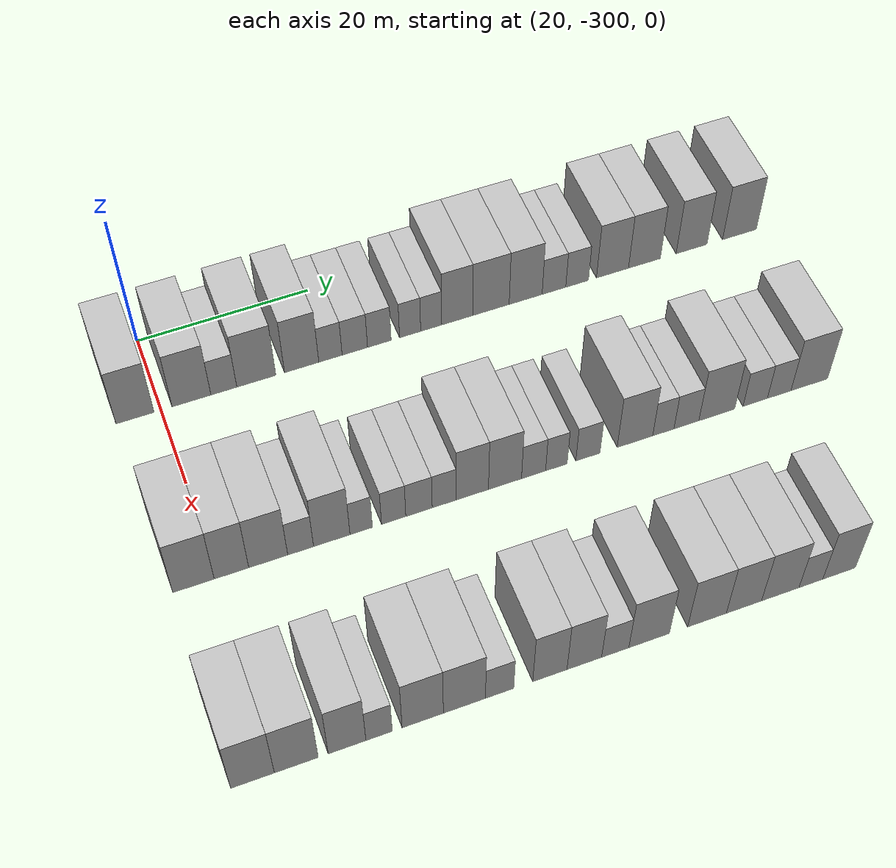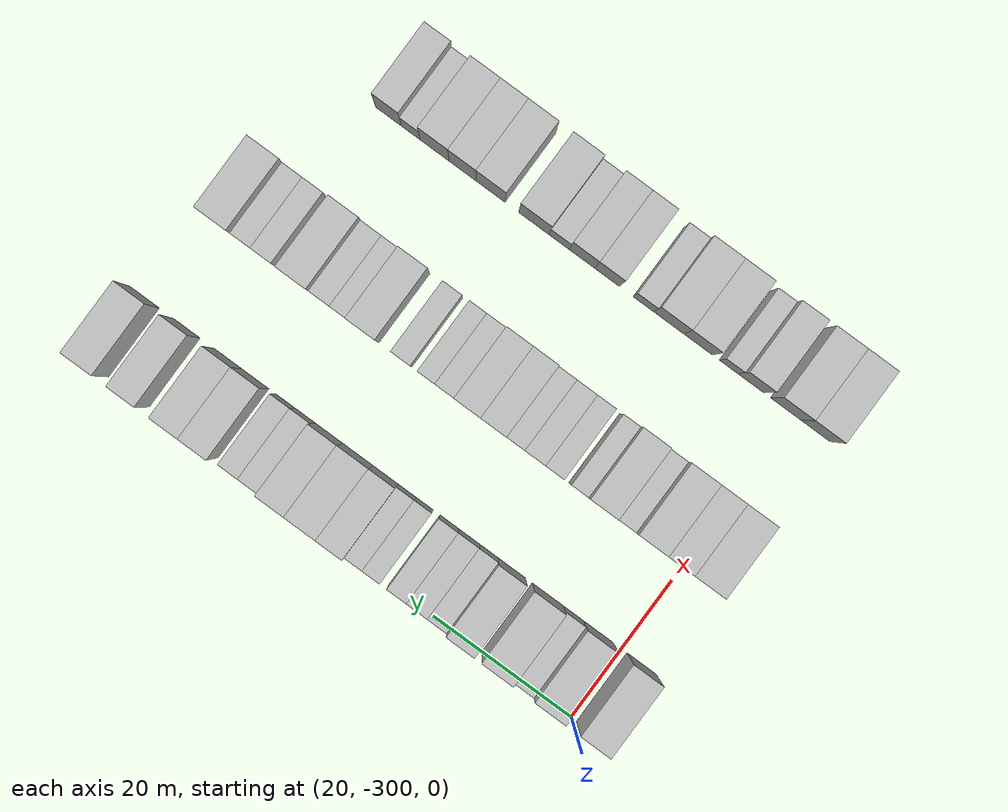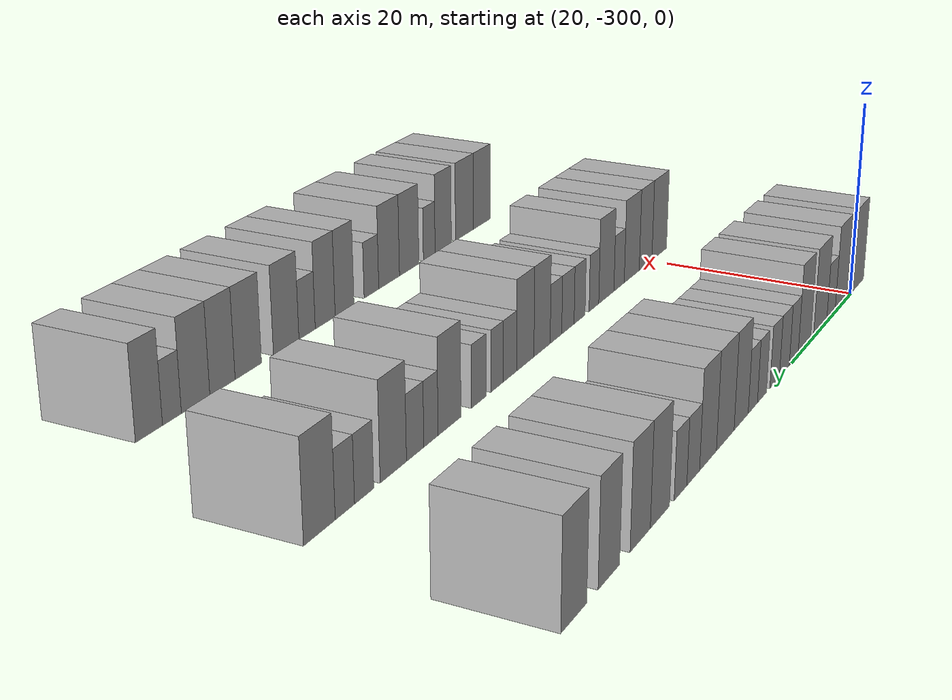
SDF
<sdf version="1.6">
 <world name="default">
  <model name="building_20">
   <static>1</static>
   <pose>25.0000 -302.8549 0 0.000000 0.000000 0.000000</pose>
   <link name="link">
    <pose>0 0 4.50 0 0 0</pose>
    <collision name="collision"><geometry><box><size>10.0000 4.2278 9.0000</size></box></geometry></collision>
    <visual name="visual">
     <cast_shadows>0</cast_shadows>
     <geometry><box><size>10.0000 4.2278 9.0000</size></box></geometry>
     <material>
      <script>
       <uri>model://HANNAS_wall/materials/scripts</uri>
       <uri>model://HANNAS_wall/materials/textures</uri>
       <name>vrc/HANNAS_wall</name>
      </script>
     </material>
    </visual>
   </link>
  </model>
  <model name="building_21">
   <static>1</static>
   <pose>25.0000 -296.5564 0 0.000000 0.000000 0.000000</pose>
   <link name="link">
    <pose>0 0 4.50 0 0 0</pose>
    <collision name="collision"><geometry><box><size>10.0000 4.3691 9.0000</size></box></geometry></collision>
    <visual name="visual">
     <cast_shadows>0</cast_shadows>
     <geometry><box><size>10.0000 4.3691 9.0000</size></box></geometry>
     <material>
      <script>
       <uri>model://HANNAS_wall/materials/scripts</uri>
       <uri>model://HANNAS_wall/materials/textures</uri>
       <name>vrc/HANNAS_wall</name>
      </script>
     </material>
    </visual>
   </link>
  </model>
  <model name="building_22">
   <static>1</static>
   <pose>25.0000 -292.9049 0 0.000000 0.000000 0.000000</pose>
   <link name="link">
    <pose>0 0 3.00 0 0 0</pose>
    <collision name="collision"><geometry><box><size>10.0000 2.9339 6.0000</size></box></geometry></collision>
    <visual name="visual">
     <cast_shadows>0</cast_shadows>
     <geometry><box><size>10.0000 2.9339 6.0000</size></box></geometry>
     <material>
      <script>
       <uri>model://HANNAS_wall/materials/scripts</uri>
       <uri>model://HANNAS_wall/materials/textures</uri>
       <name>vrc/HANNAS_wall</name>
      </script>
     </material>
    </visual>
   </link>
  </model>
  <model name="building_23">
   <static>1</static>
   <pose>25.0000 -289.2133 0 0.000000 0.000000 0.000000</pose>
   <link name="link">
    <pose>0 0 4.50 0 0 0</pose>
    <collision name="collision"><geometry><box><size>10.0000 4.4492 9.0000</size></box></geometry></collision>
    <visual name="visual">
     <cast_shadows>0</cast_shadows>
     <geometry><box><size>10.0000 4.4492 9.0000</size></box></geometry>
     <material>
      <script>
       <uri>model://HANNAS_wall/materials/scripts</uri>
       <uri>model://HANNAS_wall/materials/textures</uri>
       <name>vrc/HANNAS_wall</name>
      </script>
     </material>
    </visual>
   </link>
  </model>
  <model name="building_24">
   <static>1</static>
   <pose>25.0000 -284.0111 0 0.000000 0.000000 0.000000</pose>
   <link name="link">
    <pose>0 0 4.50 0 0 0</pose>
    <collision name="collision"><geometry><box><size>10.0000 3.9553 9.0000</size></box></geometry></collision>
    <visual name="visual">
     <cast_shadows>0</cast_shadows>
     <geometry><box><size>10.0000 3.9553 9.0000</size></box></geometry>
     <material>
      <script>
       <uri>model://HANNAS_wall/materials/scripts</uri>
       <uri>model://HANNAS_wall/materials/textures</uri>
       <name>vrc/HANNAS_wall</name>
      </script>
     </material>
    </visual>
   </link>
  </model>
  <model name="building_25">
   <static>1</static>
   <pose>25.0000 -280.6774 0 0.000000 0.000000 0.000000</pose>
   <link name="link">
    <pose>0 0 3.00 0 0 0</pose>
    <collision name="collision"><geometry><box><size>10.0000 2.7122 6.0000</size></box></geometry></collision>
    <visual name="visual">
     <cast_shadows>0</cast_shadows>
     <geometry><box><size>10.0000 2.7122 6.0000</size></box></geometry>
     <material>
      <script>
       <uri>model://HANNAS_wall/materials/scripts</uri>
       <uri>model://HANNAS_wall/materials/textures</uri>
       <name>vrc/HANNAS_wall</name>
      </script>
     </material>
    </visual>
   </link>
  </model>
  <model name="building_26">
   <static>1</static>
   <pose>25.0000 -277.8356 0 0.000000 0.000000 0.000000</pose>
   <link name="link">
    <pose>0 0 3.00 0 0 0</pose>
    <collision name="collision"><geometry><box><size>10.0000 2.9714 6.0000</size></box></geometry></collision>
    <visual name="visual">
     <cast_shadows>0</cast_shadows>
     <geometry><box><size>10.0000 2.9714 6.0000</size></box></geometry>
     <material>
      <script>
       <uri>model://HANNAS_wall/materials/scripts</uri>
       <uri>model://HANNAS_wall/materials/textures</uri>
       <name>vrc/HANNAS_wall</name>
      </script>
     </material>
    </visual>
   </link>
  </model>
  <model name="building_27">
   <static>1</static>
   <pose>25.0000 -274.9636 0 0.000000 0.000000 0.000000</pose>
   <link name="link">
    <pose>0 0 3.00 0 0 0</pose>
    <collision name="collision"><geometry><box><size>10.0000 2.7726 6.0000</size></box></geometry></collision>
    <visual name="visual">
     <cast_shadows>0</cast_shadows>
     <geometry><box><size>10.0000 2.7726 6.0000</size></box></geometry>
     <material>
      <script>
       <uri>model://HANNAS_wall/materials/scripts</uri>
       <uri>model://HANNAS_wall/materials/textures</uri>
       <name>vrc/HANNAS_wall</name>
      </script>
     </material>
    </visual>
   </link>
  </model>
  <model name="building_28">
   <static>1</static>
   <pose>25.0000 -271.3262 0 0.000000 0.000000 0.000000</pose>
   <link name="link">
    <pose>0 0 3.00 0 0 0</pose>
    <collision name="collision"><geometry><box><size>10.0000 2.5022 6.0000</size></box></geometry></collision>
    <visual name="visual">
     <cast_shadows>0</cast_shadows>
     <geometry><box><size>10.0000 2.5022 6.0000</size></box></geometry>
     <material>
      <script>
       <uri>model://HANNAS_wall/materials/scripts</uri>
       <uri>model://HANNAS_wall/materials/textures</uri>
       <name>vrc/HANNAS_wall</name>
      </script>
     </material>
    </visual>
   </link>
  </model>
  <model name="building_29">
   <static>1</static>
   <pose>25.0000 -268.8199 0 0.000000 0.000000 0.000000</pose>
   <link name="link">
    <pose>0 0 3.00 0 0 0</pose>
    <collision name="collision"><geometry><box><size>10.0000 2.5104 6.0000</size></box></geometry></collision>
    <visual name="visual">
     <cast_shadows>0</cast_shadows>
     <geometry><box><size>10.0000 2.5104 6.0000</size></box></geometry>
     <material>
      <script>
       <uri>model://HANNAS_wall/materials/scripts</uri>
       <uri>model://HANNAS_wall/materials/textures</uri>
       <name>vrc/HANNAS_wall</name>
      </script>
     </material>
    </visual>
   </link>
  </model>
  <model name="building_30">
   <static>1</static>
   <pose>25.0000 -265.7104 0 0.000000 0.000000 0.000000</pose>
   <link name="link">
    <pose>0 0 4.50 0 0 0</pose>
    <collision name="collision"><geometry><box><size>10.0000 3.7086 9.0000</size></box></geometry></collision>
    <visual name="visual">
     <cast_shadows>0</cast_shadows>
     <geometry><box><size>10.0000 3.7086 9.0000</size></box></geometry>
     <material>
      <script>
       <uri>model://HANNAS_wall/materials/scripts</uri>
       <uri>model://HANNAS_wall/materials/textures</uri>
       <name>vrc/HANNAS_wall</name>
      </script>
     </material>
    </visual>
   </link>
  </model>
  <model name="building_31">
   <static>1</static>
   <pose>25.0000 -261.6462 0 0.000000 0.000000 0.000000</pose>
   <link name="link">
    <pose>0 0 4.50 0 0 0</pose>
    <collision name="collision"><geometry><box><size>10.0000 4.4197 9.0000</size></box></geometry></collision>
    <visual name="visual">
     <cast_shadows>0</cast_shadows>
     <geometry><box><size>10.0000 4.4197 9.0000</size></box></geometry>
     <material>
      <script>
       <uri>model://HANNAS_wall/materials/scripts</uri>
       <uri>model://HANNAS_wall/materials/textures</uri>
       <name>vrc/HANNAS_wall</name>
      </script>
     </material>
    </visual>
   </link>
  </model>
  <model name="building_32">
   <static>1</static>
   <pose>25.0000 -257.4241 0 0.000000 0.000000 0.000000</pose>
   <link name="link">
    <pose>0 0 4.50 0 0 0</pose>
    <collision name="collision"><geometry><box><size>10.0000 4.0246 9.0000</size></box></geometry></collision>
    <visual name="visual">
     <cast_shadows>0</cast_shadows>
     <geometry><box><size>10.0000 4.0246 9.0000</size></box></geometry>
     <material>
      <script>
       <uri>model://HANNAS_wall/materials/scripts</uri>
       <uri>model://HANNAS_wall/materials/textures</uri>
       <name>vrc/HANNAS_wall</name>
      </script>
     </material>
    </visual>
   </link>
  </model>
  <model name="building_33">
   <static>1</static>
   <pose>25.0000 -253.9548 0 0.000000 0.000000 0.000000</pose>
   <link name="link">
    <pose>0 0 3.00 0 0 0</pose>
    <collision name="collision"><geometry><box><size>10.0000 2.9138 6.0000</size></box></geometry></collision>
    <visual name="visual">
     <cast_shadows>0</cast_shadows>
     <geometry><box><size>10.0000 2.9138 6.0000</size></box></geometry>
     <material>
      <script>
       <uri>model://HANNAS_wall/materials/scripts</uri>
       <uri>model://HANNAS_wall/materials/textures</uri>
       <name>vrc/HANNAS_wall</name>
      </script>
     </material>
    </visual>
   </link>
  </model>
  <model name="building_34">
   <static>1</static>
   <pose>25.0000 -251.0961 0 0.000000 0.000000 0.000000</pose>
   <link name="link">
    <pose>0 0 3.00 0 0 0</pose>
    <collision name="collision"><geometry><box><size>10.0000 2.8036 6.0000</size></box></geometry></collision>
    <visual name="visual">
     <cast_shadows>0</cast_shadows>
     <geometry><box><size>10.0000 2.8036 6.0000</size></box></geometry>
     <material>
      <script>
       <uri>model://HANNAS_wall/materials/scripts</uri>
       <uri>model://HANNAS_wall/materials/textures</uri>
       <name>vrc/HANNAS_wall</name>
      </script>
     </material>
    </visual>
   </link>
  </model>
  <model name="building_35">
   <static>1</static>
   <pose>25.0000 -246.6942 0 0.000000 0.000000 0.000000</pose>
   <link name="link">
    <pose>0 0 4.50 0 0 0</pose>
    <collision name="collision"><geometry><box><size>10.0000 4.0003 9.0000</size></box></geometry></collision>
    <visual name="visual">
     <cast_shadows>0</cast_shadows>
     <geometry><box><size>10.0000 4.0003 9.0000</size></box></geometry>
     <material>
      <script>
       <uri>model://HANNAS_wall/materials/scripts</uri>
       <uri>model://HANNAS_wall/materials/textures</uri>
       <name>vrc/HANNAS_wall</name>
      </script>
     </material>
    </visual>
   </link>
  </model>
  <model name="building_36">
   <static>1</static>
   <pose>25.0000 -242.6886 0 0.000000 0.000000 0.000000</pose>
   <link name="link">
    <pose>0 0 4.50 0 0 0</pose>
    <collision name="collision"><geometry><box><size>10.0000 4.0109 9.0000</size></box></geometry></collision>
    <visual name="visual">
     <cast_shadows>0</cast_shadows>
     <geometry><box><size>10.0000 4.0109 9.0000</size></box></geometry>
     <material>
      <script>
       <uri>model://HANNAS_wall/materials/scripts</uri>
       <uri>model://HANNAS_wall/materials/textures</uri>
       <name>vrc/HANNAS_wall</name>
      </script>
     </material>
    </visual>
   </link>
  </model>
  <model name="building_37">
   <static>1</static>
   <pose>25.0000 -236.7161 0 0.000000 0.000000 0.000000</pose>
   <link name="link">
    <pose>0 0 4.50 0 0 0</pose>
    <collision name="collision"><geometry><box><size>10.0000 3.9342 9.0000</size></box></geometry></collision>
    <visual name="visual">
     <cast_shadows>0</cast_shadows>
     <geometry><box><size>10.0000 3.9342 9.0000</size></box></geometry>
     <material>
      <script>
       <uri>model://HANNAS_wall/materials/scripts</uri>
       <uri>model://HANNAS_wall/materials/textures</uri>
       <name>vrc/HANNAS_wall</name>
      </script>
     </material>
    </visual>
   </link>
  </model>
  <model name="building_38">
   <static>1</static>
   <pose>25.0000 -230.5687 0 0.000000 0.000000 0.000000</pose>
   <link name="link">
    <pose>0 0 4.50 0 0 0</pose>
    <collision name="collision"><geometry><box><size>10.0000 4.3606 9.0000</size></box></geometry></collision>
    <visual name="visual">
     <cast_shadows>0</cast_shadows>
     <geometry><box><size>10.0000 4.3606 9.0000</size></box></geometry>
     <material>
      <script>
       <uri>model://HANNAS_wall/materials/scripts</uri>
       <uri>model://HANNAS_wall/materials/textures</uri>
       <name>vrc/HANNAS_wall</name>
      </script>
     </material>
    </visual>
   </link>
  </model>
  <model name="building_212">
   <static>1</static>
   <pose>47.0000 -302.5808 0 0.000000 0.000000 0.000000</pose>
   <link name="link">
    <pose>0 0 4.50 0 0 0</pose>
    <collision name="collision"><geometry><box><size>10.0000 4.3414 9.0000</size></box></geometry></collision>
    <visual name="visual">
     <cast_shadows>0</cast_shadows>
     <geometry><box><size>10.0000 4.3414 9.0000</size></box></geometry>
     <material>
      <script>
       <uri>model://HANNAS_wall/materials/scripts</uri>
       <uri>model://HANNAS_wall/materials/textures</uri>
       <name>vrc/HANNAS_wall</name>
      </script>
     </material>
    </visual>
   </link>
  </model>
  <model name="building_213">
   <static>1</static>
   <pose>47.0000 -298.5908 0 0.000000 0.000000 0.000000</pose>
   <link name="link">
    <pose>0 0 4.50 0 0 0</pose>
    <collision name="collision"><geometry><box><size>10.0000 3.6384 9.0000</size></box></geometry></collision>
    <visual name="visual">
     <cast_shadows>0</cast_shadows>
     <geometry><box><size>10.0000 3.6384 9.0000</size></box></geometry>
     <material>
      <script>
       <uri>model://HANNAS_wall/materials/scripts</uri>
       <uri>model://HANNAS_wall/materials/textures</uri>
       <name>vrc/HANNAS_wall</name>
      </script>
     </material>
    </visual>
   </link>
  </model>
  <model name="building_214">
   <static>1</static>
   <pose>47.0000 -294.6976 0 0.000000 0.000000 0.000000</pose>
   <link name="link">
    <pose>0 0 4.50 0 0 0</pose>
    <collision name="collision"><geometry><box><size>10.0000 4.1480 9.0000</size></box></geometry></collision>
    <visual name="visual">
     <cast_shadows>0</cast_shadows>
     <geometry><box><size>10.0000 4.1480 9.0000</size></box></geometry>
     <material>
      <script>
       <uri>model://HANNAS_wall/materials/scripts</uri>
       <uri>model://HANNAS_wall/materials/textures</uri>
       <name>vrc/HANNAS_wall</name>
      </script>
     </material>
    </visual>
   </link>
  </model>
  <model name="building_215">
   <static>1</static>
   <pose>47.0000 -291.2362 0 0.000000 0.000000 0.000000</pose>
   <link name="link">
    <pose>0 0 3.00 0 0 0</pose>
    <collision name="collision"><geometry><box><size>10.0000 2.7749 6.0000</size></box></geometry></collision>
    <visual name="visual">
     <cast_shadows>0</cast_shadows>
     <geometry><box><size>10.0000 2.7749 6.0000</size></box></geometry>
     <material>
      <script>
       <uri>model://HANNAS_wall/materials/scripts</uri>
       <uri>model://HANNAS_wall/materials/textures</uri>
       <name>vrc/HANNAS_wall</name>
      </script>
     </material>
    </visual>
   </link>
  </model>
  <model name="building_216">
   <static>1</static>
   <pose>47.0000 -287.8774 0 0.000000 0.000000 0.000000</pose>
   <link name="link">
    <pose>0 0 4.50 0 0 0</pose>
    <collision name="collision"><geometry><box><size>10.0000 3.9426 9.0000</size></box></geometry></collision>
    <visual name="visual">
     <cast_shadows>0</cast_shadows>
     <geometry><box><size>10.0000 3.9426 9.0000</size></box></geometry>
     <material>
      <script>
       <uri>model://HANNAS_wall/materials/scripts</uri>
       <uri>model://HANNAS_wall/materials/textures</uri>
       <name>vrc/HANNAS_wall</name>
      </script>
     </material>
    </visual>
   </link>
  </model>
  <model name="building_217">
   <static>1</static>
   <pose>47.0000 -284.6875 0 0.000000 0.000000 0.000000</pose>
   <link name="link">
    <pose>0 0 3.00 0 0 0</pose>
    <collision name="collision"><geometry><box><size>10.0000 2.4372 6.0000</size></box></geometry></collision>
    <visual name="visual">
     <cast_shadows>0</cast_shadows>
     <geometry><box><size>10.0000 2.4372 6.0000</size></box></geometry>
     <material>
      <script>
       <uri>model://HANNAS_wall/materials/scripts</uri>
       <uri>model://HANNAS_wall/materials/textures</uri>
       <name>vrc/HANNAS_wall</name>
      </script>
     </material>
    </visual>
   </link>
  </model>
  <model name="building_218">
   <static>1</static>
   <pose>47.0000 -281.1373 0 0.000000 0.000000 0.000000</pose>
   <link name="link">
    <pose>0 0 3.00 0 0 0</pose>
    <collision name="collision"><geometry><box><size>10.0000 2.6631 6.0000</size></box></geometry></collision>
    <visual name="visual">
     <cast_shadows>0</cast_shadows>
     <geometry><box><size>10.0000 2.6631 6.0000</size></box></geometry>
     <material>
      <script>
       <uri>model://HANNAS_wall/materials/scripts</uri>
       <uri>model://HANNAS_wall/materials/textures</uri>
       <name>vrc/HANNAS_wall</name>
      </script>
     </material>
    </visual>
   </link>
  </model>
  <model name="building_219">
   <static>1</static>
   <pose>47.0000 -278.3452 0 0.000000 0.000000 0.000000</pose>
   <link name="link">
    <pose>0 0 3.00 0 0 0</pose>
    <collision name="collision"><geometry><box><size>10.0000 2.9211 6.0000</size></box></geometry></collision>
    <visual name="visual">
     <cast_shadows>0</cast_shadows>
     <geometry><box><size>10.0000 2.9211 6.0000</size></box></geometry>
     <material>
      <script>
       <uri>model://HANNAS_wall/materials/scripts</uri>
       <uri>model://HANNAS_wall/materials/textures</uri>
       <name>vrc/HANNAS_wall</name>
      </script>
     </material>
    </visual>
   </link>
  </model>
  <model name="building_220">
   <static>1</static>
   <pose>47.0000 -275.5554 0 0.000000 0.000000 0.000000</pose>
   <link name="link">
    <pose>0 0 3.00 0 0 0</pose>
    <collision name="collision"><geometry><box><size>10.0000 2.6586 6.0000</size></box></geometry></collision>
    <visual name="visual">
     <cast_shadows>0</cast_shadows>
     <geometry><box><size>10.0000 2.6586 6.0000</size></box></geometry>
     <material>
      <script>
       <uri>model://HANNAS_wall/materials/scripts</uri>
       <uri>model://HANNAS_wall/materials/textures</uri>
       <name>vrc/HANNAS_wall</name>
      </script>
     </material>
    </visual>
   </link>
  </model>
  <model name="building_221">
   <static>1</static>
   <pose>47.0000 -272.4145 0 0.000000 0.000000 0.000000</pose>
   <link name="link">
    <pose>0 0 4.50 0 0 0</pose>
    <collision name="collision"><geometry><box><size>10.0000 3.6231 9.0000</size></box></geometry></collision>
    <visual name="visual">
     <cast_shadows>0</cast_shadows>
     <geometry><box><size>10.0000 3.6231 9.0000</size></box></geometry>
     <material>
      <script>
       <uri>model://HANNAS_wall/materials/scripts</uri>
       <uri>model://HANNAS_wall/materials/textures</uri>
       <name>vrc/HANNAS_wall</name>
      </script>
     </material>
    </visual>
   </link>
  </model>
  <model name="building_222">
   <static>1</static>
   <pose>47.0000 -268.7362 0 0.000000 0.000000 0.000000</pose>
   <link name="link">
    <pose>0 0 4.50 0 0 0</pose>
    <collision name="collision"><geometry><box><size>10.0000 3.7335 9.0000</size></box></geometry></collision>
    <visual name="visual">
     <cast_shadows>0</cast_shadows>
     <geometry><box><size>10.0000 3.7335 9.0000</size></box></geometry>
     <material>
      <script>
       <uri>model://HANNAS_wall/materials/scripts</uri>
       <uri>model://HANNAS_wall/materials/textures</uri>
       <name>vrc/HANNAS_wall</name>
      </script>
     </material>
    </visual>
   </link>
  </model>
  <model name="building_223">
   <static>1</static>
   <pose>47.0000 -265.4979 0 0.000000 0.000000 0.000000</pose>
   <link name="link">
    <pose>0 0 3.00 0 0 0</pose>
    <collision name="collision"><geometry><box><size>10.0000 2.7430 6.0000</size></box></geometry></collision>
    <visual name="visual">
     <cast_shadows>0</cast_shadows>
     <geometry><box><size>10.0000 2.7430 6.0000</size></box></geometry>
     <material>
      <script>
       <uri>model://HANNAS_wall/materials/scripts</uri>
       <uri>model://HANNAS_wall/materials/textures</uri>
       <name>vrc/HANNAS_wall</name>
      </script>
     </material>
    </visual>
   </link>
  </model>
  <model name="building_224">
   <static>1</static>
   <pose>47.0000 -262.8941 0 0.000000 0.000000 0.000000</pose>
   <link name="link">
    <pose>0 0 3.00 0 0 0</pose>
    <collision name="collision"><geometry><box><size>10.0000 2.4647 6.0000</size></box></geometry></collision>
    <visual name="visual">
     <cast_shadows>0</cast_shadows>
     <geometry><box><size>10.0000 2.4647 6.0000</size></box></geometry>
     <material>
      <script>
       <uri>model://HANNAS_wall/materials/scripts</uri>
       <uri>model://HANNAS_wall/materials/textures</uri>
       <name>vrc/HANNAS_wall</name>
      </script>
     </material>
    </visual>
   </link>
  </model>
  <model name="building_225">
   <static>1</static>
   <pose>47.0000 -259.2667 0 0.000000 0.000000 0.000000</pose>
   <link name="link">
    <pose>0 0 3.00 0 0 0</pose>
    <collision name="collision"><geometry><box><size>10.0000 2.7899 6.0000</size></box></geometry></collision>
    <visual name="visual">
     <cast_shadows>0</cast_shadows>
     <geometry><box><size>10.0000 2.7899 6.0000</size></box></geometry>
     <material>
      <script>
       <uri>model://HANNAS_wall/materials/scripts</uri>
       <uri>model://HANNAS_wall/materials/textures</uri>
       <name>vrc/HANNAS_wall</name>
      </script>
     </material>
    </visual>
   </link>
  </model>
  <model name="building_226">
   <static>1</static>
   <pose>47.0000 -253.7981 0 0.000000 0.000000 0.000000</pose>
   <link name="link">
    <pose>0 0 4.50 0 0 0</pose>
    <collision name="collision"><geometry><box><size>10.0000 4.1475 9.0000</size></box></geometry></collision>
    <visual name="visual">
     <cast_shadows>0</cast_shadows>
     <geometry><box><size>10.0000 4.1475 9.0000</size></box></geometry>
     <material>
      <script>
       <uri>model://HANNAS_wall/materials/scripts</uri>
       <uri>model://HANNAS_wall/materials/textures</uri>
       <name>vrc/HANNAS_wall</name>
      </script>
     </material>
    </visual>
   </link>
  </model>
  <model name="building_227">
   <static>1</static>
   <pose>47.0000 -250.4763 0 0.000000 0.000000 0.000000</pose>
   <link name="link">
    <pose>0 0 3.00 0 0 0</pose>
    <collision name="collision"><geometry><box><size>10.0000 2.4961 6.0000</size></box></geometry></collision>
    <visual name="visual">
     <cast_shadows>0</cast_shadows>
     <geometry><box><size>10.0000 2.4961 6.0000</size></box></geometry>
     <material>
      <script>
       <uri>model://HANNAS_wall/materials/scripts</uri>
       <uri>model://HANNAS_wall/materials/textures</uri>
       <name>vrc/HANNAS_wall</name>
      </script>
     </material>
    </visual>
   </link>
  </model>
  <model name="building_228">
   <static>1</static>
   <pose>47.0000 -247.7546 0 0.000000 0.000000 0.000000</pose>
   <link name="link">
    <pose>0 0 3.00 0 0 0</pose>
    <collision name="collision"><geometry><box><size>10.0000 2.9472 6.0000</size></box></geometry></collision>
    <visual name="visual">
     <cast_shadows>0</cast_shadows>
     <geometry><box><size>10.0000 2.9472 6.0000</size></box></geometry>
     <material>
      <script>
       <uri>model://HANNAS_wall/materials/scripts</uri>
       <uri>model://HANNAS_wall/materials/textures</uri>
       <name>vrc/HANNAS_wall</name>
      </script>
     </material>
    </visual>
   </link>
  </model>
  <model name="building_229">
   <static>1</static>
   <pose>47.0000 -244.1384 0 0.000000 0.000000 0.000000</pose>
   <link name="link">
    <pose>0 0 4.50 0 0 0</pose>
    <collision name="collision"><geometry><box><size>10.0000 4.2853 9.0000</size></box></geometry></collision>
    <visual name="visual">
     <cast_shadows>0</cast_shadows>
     <geometry><box><size>10.0000 4.2853 9.0000</size></box></geometry>
     <material>
      <script>
       <uri>model://HANNAS_wall/materials/scripts</uri>
       <uri>model://HANNAS_wall/materials/textures</uri>
       <name>vrc/HANNAS_wall</name>
      </script>
     </material>
    </visual>
   </link>
  </model>
  <model name="building_230">
   <static>1</static>
   <pose>47.0000 -239.5232 0 0.000000 0.000000 0.000000</pose>
   <link name="link">
    <pose>0 0 3.00 0 0 0</pose>
    <collision name="collision"><geometry><box><size>10.0000 2.9451 6.0000</size></box></geometry></collision>
    <visual name="visual">
     <cast_shadows>0</cast_shadows>
     <geometry><box><size>10.0000 2.9451 6.0000</size></box></geometry>
     <material>
      <script>
       <uri>model://HANNAS_wall/materials/scripts</uri>
       <uri>model://HANNAS_wall/materials/textures</uri>
       <name>vrc/HANNAS_wall</name>
      </script>
     </material>
    </visual>
   </link>
  </model>
  <model name="building_231">
   <static>1</static>
   <pose>47.0000 -236.6219 0 0.000000 0.000000 0.000000</pose>
   <link name="link">
    <pose>0 0 3.00 0 0 0</pose>
    <collision name="collision"><geometry><box><size>10.0000 2.8576 6.0000</size></box></geometry></collision>
    <visual name="visual">
     <cast_shadows>0</cast_shadows>
     <geometry><box><size>10.0000 2.8576 6.0000</size></box></geometry>
     <material>
      <script>
       <uri>model://HANNAS_wall/materials/scripts</uri>
       <uri>model://HANNAS_wall/materials/textures</uri>
       <name>vrc/HANNAS_wall</name>
      </script>
     </material>
    </visual>
   </link>
  </model>
  <model name="building_232">
   <static>1</static>
   <pose>47.0000 -232.9536 0 0.000000 0.000000 0.000000</pose>
   <link name="link">
    <pose>0 0 4.50 0 0 0</pose>
    <collision name="collision"><geometry><box><size>10.0000 4.4789 9.0000</size></box></geometry></collision>
    <visual name="visual">
     <cast_shadows>0</cast_shadows>
     <geometry><box><size>10.0000 4.4789 9.0000</size></box></geometry>
     <material>
      <script>
       <uri>model://HANNAS_wall/materials/scripts</uri>
       <uri>model://HANNAS_wall/materials/textures</uri>
       <name>vrc/HANNAS_wall</name>
      </script>
     </material>
    </visual>
   </link>
  </model>
  <model name="building_395">
   <static>1</static>
   <pose>69.0000 -303.0894 0 0.000000 0.000000 0.000000</pose>
   <link name="link">
    <pose>0 0 4.50 0 0 0</pose>
    <collision name="collision"><geometry><box><size>10.0000 4.2904 9.0000</size></box></geometry></collision>
    <visual name="visual">
     <cast_shadows>0</cast_shadows>
     <geometry><box><size>10.0000 4.2904 9.0000</size></box></geometry>
     <material>
      <script>
       <uri>model://HANNAS_wall/materials/scripts</uri>
       <uri>model://HANNAS_wall/materials/textures</uri>
       <name>vrc/HANNAS_wall</name>
      </script>
     </material>
    </visual>
   </link>
  </model>
  <model name="building_396">
   <static>1</static>
   <pose>69.0000 -298.7717 0 0.000000 0.000000 0.000000</pose>
   <link name="link">
    <pose>0 0 4.50 0 0 0</pose>
    <collision name="collision"><geometry><box><size>10.0000 4.3449 9.0000</size></box></geometry></collision>
    <visual name="visual">
     <cast_shadows>0</cast_shadows>
     <geometry><box><size>10.0000 4.3449 9.0000</size></box></geometry>
     <material>
      <script>
       <uri>model://HANNAS_wall/materials/scripts</uri>
       <uri>model://HANNAS_wall/materials/textures</uri>
       <name>vrc/HANNAS_wall</name>
      </script>
     </material>
    </visual>
   </link>
  </model>
  <model name="building_397">
   <static>1</static>
   <pose>69.0000 -293.7075 0 0.000000 0.000000 0.000000</pose>
   <link name="link">
    <pose>0 0 4.50 0 0 0</pose>
    <collision name="collision"><geometry><box><size>10.0000 3.7834 9.0000</size></box></geometry></collision>
    <visual name="visual">
     <cast_shadows>0</cast_shadows>
     <geometry><box><size>10.0000 3.7834 9.0000</size></box></geometry>
     <material>
      <script>
       <uri>model://HANNAS_wall/materials/scripts</uri>
       <uri>model://HANNAS_wall/materials/textures</uri>
       <name>vrc/HANNAS_wall</name>
      </script>
     </material>
    </visual>
   </link>
  </model>
  <model name="building_398">
   <static>1</static>
   <pose>69.0000 -290.4821 0 0.000000 0.000000 0.000000</pose>
   <link name="link">
    <pose>0 0 3.00 0 0 0</pose>
    <collision name="collision"><geometry><box><size>10.0000 2.6675 6.0000</size></box></geometry></collision>
    <visual name="visual">
     <cast_shadows>0</cast_shadows>
     <geometry><box><size>10.0000 2.6675 6.0000</size></box></geometry>
     <material>
      <script>
       <uri>model://HANNAS_wall/materials/scripts</uri>
       <uri>model://HANNAS_wall/materials/textures</uri>
       <name>vrc/HANNAS_wall</name>
      </script>
     </material>
    </visual>
   </link>
  </model>
  <model name="building_399">
   <static>1</static>
   <pose>69.0000 -286.0371 0 0.000000 0.000000 0.000000</pose>
   <link name="link">
    <pose>0 0 4.50 0 0 0</pose>
    <collision name="collision"><geometry><box><size>10.0000 4.2225 9.0000</size></box></geometry></collision>
    <visual name="visual">
     <cast_shadows>0</cast_shadows>
     <geometry><box><size>10.0000 4.2225 9.0000</size></box></geometry>
     <material>
      <script>
       <uri>model://HANNAS_wall/materials/scripts</uri>
       <uri>model://HANNAS_wall/materials/textures</uri>
       <name>vrc/HANNAS_wall</name>
      </script>
     </material>
    </visual>
   </link>
  </model>
  <model name="building_400">
   <static>1</static>
   <pose>69.0000 -281.7550 0 0.000000 0.000000 0.000000</pose>
   <link name="link">
    <pose>0 0 4.50 0 0 0</pose>
    <collision name="collision"><geometry><box><size>10.0000 4.3418 9.0000</size></box></geometry></collision>
    <visual name="visual">
     <cast_shadows>0</cast_shadows>
     <geometry><box><size>10.0000 4.3418 9.0000</size></box></geometry>
     <material>
      <script>
       <uri>model://HANNAS_wall/materials/scripts</uri>
       <uri>model://HANNAS_wall/materials/textures</uri>
       <name>vrc/HANNAS_wall</name>
      </script>
     </material>
    </visual>
   </link>
  </model>
  <model name="building_401">
   <static>1</static>
   <pose>69.0000 -278.1033 0 0.000000 0.000000 0.000000</pose>
   <link name="link">
    <pose>0 0 3.00 0 0 0</pose>
    <collision name="collision"><geometry><box><size>10.0000 2.9614 6.0000</size></box></geometry></collision>
    <visual name="visual">
     <cast_shadows>0</cast_shadows>
     <geometry><box><size>10.0000 2.9614 6.0000</size></box></geometry>
     <material>
      <script>
       <uri>model://HANNAS_wall/materials/scripts</uri>
       <uri>model://HANNAS_wall/materials/textures</uri>
       <name>vrc/HANNAS_wall</name>
      </script>
     </material>
    </visual>
   </link>
  </model>
  <model name="building_402">
   <static>1</static>
   <pose>69.0000 -272.8158 0 0.000000 0.000000 0.000000</pose>
   <link name="link">
    <pose>0 0 4.50 0 0 0</pose>
    <collision name="collision"><geometry><box><size>10.0000 3.6137 9.0000</size></box></geometry></collision>
    <visual name="visual">
     <cast_shadows>0</cast_shadows>
     <geometry><box><size>10.0000 3.6137 9.0000</size></box></geometry>
     <material>
      <script>
       <uri>model://HANNAS_wall/materials/scripts</uri>
       <uri>model://HANNAS_wall/materials/textures</uri>
       <name>vrc/HANNAS_wall</name>
      </script>
     </material>
    </visual>
   </link>
  </model>
  <model name="building_403">
   <static>1</static>
   <pose>69.0000 -269.1625 0 0.000000 0.000000 0.000000</pose>
   <link name="link">
    <pose>0 0 4.50 0 0 0</pose>
    <collision name="collision"><geometry><box><size>10.0000 3.6928 9.0000</size></box></geometry></collision>
    <visual name="visual">
     <cast_shadows>0</cast_shadows>
     <geometry><box><size>10.0000 3.6928 9.0000</size></box></geometry>
     <material>
      <script>
       <uri>model://HANNAS_wall/materials/scripts</uri>
       <uri>model://HANNAS_wall/materials/textures</uri>
       <name>vrc/HANNAS_wall</name>
      </script>
     </material>
    </visual>
   </link>
  </model>
  <model name="building_404">
   <static>1</static>
   <pose>69.0000 -265.8532 0 0.000000 0.000000 0.000000</pose>
   <link name="link">
    <pose>0 0 3.00 0 0 0</pose>
    <collision name="collision"><geometry><box><size>10.0000 2.9258 6.0000</size></box></geometry></collision>
    <visual name="visual">
     <cast_shadows>0</cast_shadows>
     <geometry><box><size>10.0000 2.9258 6.0000</size></box></geometry>
     <material>
      <script>
       <uri>model://HANNAS_wall/materials/scripts</uri>
       <uri>model://HANNAS_wall/materials/textures</uri>
       <name>vrc/HANNAS_wall</name>
      </script>
     </material>
    </visual>
   </link>
  </model>
  <model name="building_405">
   <static>1</static>
   <pose>69.0000 -262.1888 0 0.000000 0.000000 0.000000</pose>
   <link name="link">
    <pose>0 0 4.50 0 0 0</pose>
    <collision name="collision"><geometry><box><size>10.0000 4.4032 9.0000</size></box></geometry></collision>
    <visual name="visual">
     <cast_shadows>0</cast_shadows>
     <geometry><box><size>10.0000 4.4032 9.0000</size></box></geometry>
     <material>
      <script>
       <uri>model://HANNAS_wall/materials/scripts</uri>
       <uri>model://HANNAS_wall/materials/textures</uri>
       <name>vrc/HANNAS_wall</name>
      </script>
     </material>
    </visual>
   </link>
  </model>
  <model name="building_406">
   <static>1</static>
   <pose>69.0000 -255.8563 0 0.000000 0.000000 0.000000</pose>
   <link name="link">
    <pose>0 0 4.50 0 0 0</pose>
    <collision name="collision"><geometry><box><size>10.0000 4.2617 9.0000</size></box></geometry></collision>
    <visual name="visual">
     <cast_shadows>0</cast_shadows>
     <geometry><box><size>10.0000 4.2617 9.0000</size></box></geometry>
     <material>
      <script>
       <uri>model://HANNAS_wall/materials/scripts</uri>
       <uri>model://HANNAS_wall/materials/textures</uri>
       <name>vrc/HANNAS_wall</name>
      </script>
     </material>
    </visual>
   </link>
  </model>
  <model name="building_407">
   <static>1</static>
   <pose>69.0000 -251.7684 0 0.000000 0.000000 0.000000</pose>
   <link name="link">
    <pose>0 0 4.50 0 0 0</pose>
    <collision name="collision"><geometry><box><size>10.0000 3.9141 9.0000</size></box></geometry></collision>
    <visual name="visual">
     <cast_shadows>0</cast_shadows>
     <geometry><box><size>10.0000 3.9141 9.0000</size></box></geometry>
     <material>
      <script>
       <uri>model://HANNAS_wall/materials/scripts</uri>
       <uri>model://HANNAS_wall/materials/textures</uri>
       <name>vrc/HANNAS_wall</name>
      </script>
     </material>
    </visual>
   </link>
  </model>
  <model name="building_408">
   <static>1</static>
   <pose>69.0000 -247.7076 0 0.000000 0.000000 0.000000</pose>
   <link name="link">
    <pose>0 0 4.50 0 0 0</pose>
    <collision name="collision"><geometry><box><size>10.0000 4.2075 9.0000</size></box></geometry></collision>
    <visual name="visual">
     <cast_shadows>0</cast_shadows>
     <geometry><box><size>10.0000 4.2075 9.0000</size></box></geometry>
     <material>
      <script>
       <uri>model://HANNAS_wall/materials/scripts</uri>
       <uri>model://HANNAS_wall/materials/textures</uri>
       <name>vrc/HANNAS_wall</name>
      </script>
     </material>
    </visual>
   </link>
  </model>
  <model name="building_409">
   <static>1</static>
   <pose>69.0000 -244.2572 0 0.000000 0.000000 0.000000</pose>
   <link name="link">
    <pose>0 0 3.00 0 0 0</pose>
    <collision name="collision"><geometry><box><size>10.0000 2.6931 6.0000</size></box></geometry></collision>
    <visual name="visual">
     <cast_shadows>0</cast_shadows>
     <geometry><box><size>10.0000 2.6931 6.0000</size></box></geometry>
     <material>
      <script>
       <uri>model://HANNAS_wall/materials/scripts</uri>
       <uri>model://HANNAS_wall/materials/textures</uri>
       <name>vrc/HANNAS_wall</name>
      </script>
     </material>
    </visual>
   </link>
  </model>
  <model name="building_410">
   <static>1</static>
   <pose>69.0000 -241.0495 0 0.000000 0.000000 0.000000</pose>
   <link name="link">
    <pose>0 0 4.50 0 0 0</pose>
    <collision name="collision"><geometry><box><size>10.0000 3.7224 9.0000</size></box></geometry></collision>
    <visual name="visual">
     <cast_shadows>0</cast_shadows>
     <geometry><box><size>10.0000 3.7224 9.0000</size></box></geometry>
     <material>
      <script>
       <uri>model://HANNAS_wall/materials/scripts</uri>
       <uri>model://HANNAS_wall/materials/textures</uri>
       <name>vrc/HANNAS_wall</name>
      </script>
     </material>
    </visual>
   </link>
  </model>
 </world>
</sdf>
